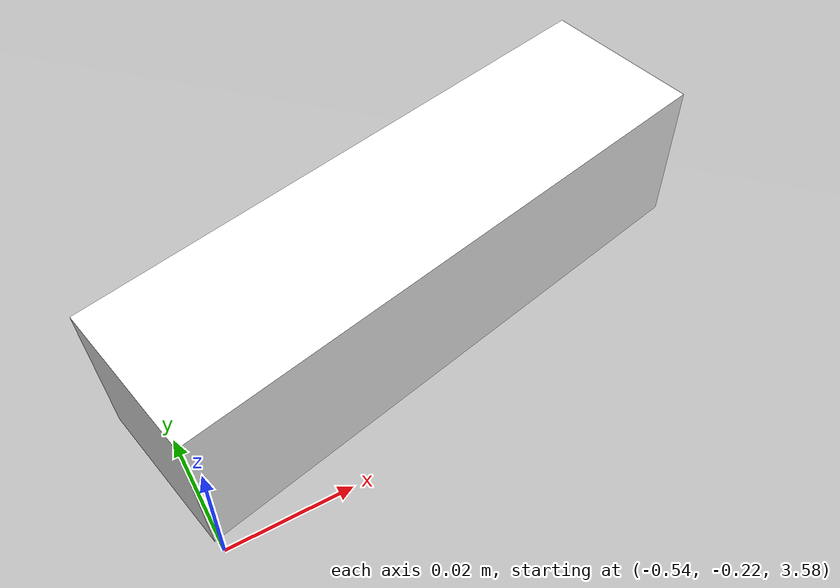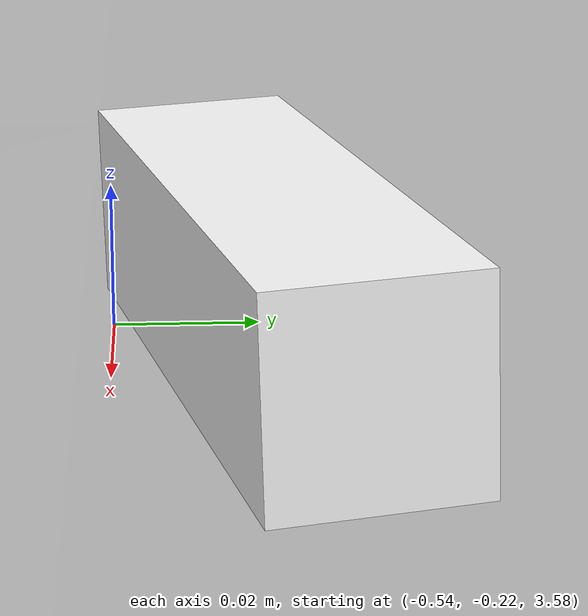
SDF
<?xml version='1.0' encoding='ASCII'?>
<sdf version='1.4'>
  <world name='solar_farm'>
    <physics type='ode'>
      <max_step_size>0.003</max_step_size>
      <real_time_factor>1.0</real_time_factor>
      <real_time_update_rate>1000</real_time_update_rate>
      <gravity>0 0 -9.8</gravity>
    </physics>
    <plugin name='gz::sim::systems::Physics' filename='libgz-sim-physics-system.so'/>
    <plugin name='gz::sim::systems::UserCommands' filename='libgz-sim-user-commands-system.so'/>
    <plugin name='gz::sim::systems::SceneBroadcaster' filename='libgz-sim-scene-broadcaster-system.so'/>
    <plugin name="gz::sim::systems::Sensors" filename="libgz-sim-sensors-system.so">
      <render_engine>ogre2</render_engine>
    </plugin>
    <plugin name="gz::sim::systems::Imu" filename="libgz-sim-imu-system.so"/>
    <plugin name="gz::sim::systems::NavSat" filename="libgz-sim-navsat-system.so"/>
    <plugin name="gz::sim::systems::ForceTorque" filename="libgz-sim-forcetorque-system.so"/>

    <scene>
      <ambient>1 1 1 1</ambient>
      <background>0.3 0.7 0.9 1</background>
      <shadows>0</shadows>
      <grid>false</grid>
      <sky>
        <clouds>
          <speed>12</speed>
        </clouds>
      </sky>
      <shadows>1</shadows>
    </scene>
    <light name='sun' type='directional'>
      <cast_shadows>1</cast_shadows>
      <pose>0 0 10 0 -0 0</pose>
      <diffuse>1.0 1.0 1.0 1</diffuse>
      <specular>0.2 0.2 0.2 1</specular>
      <attenuation>
        <range>1000</range>
        <constant>0.9</constant>
        <linear>0.01</linear>
        <quadratic>0.001</quadratic>
      </attenuation>
      <direction>-0.5 0.5 -1.0</direction>
    </light>

    <!-- Origin placed near the Big Red Barn near Stonewall, MB, Canada -->
    <spherical_coordinates>
      <surface_model>EARTH_WGS84</surface_model>
      <latitude_deg>50.109461</latitude_deg>
      <longitude_deg>-97.318978</longitude_deg>
      <elevation>250</elevation>
      <heading_deg>0</heading_deg>
    </spherical_coordinates>

    <model name='solar_farm'>
      <pose>0 0 0 0 0 3.14159</pose>
      <static>true</static>
      <link name='solar_farm'>
        <collision name='solar_farm_collision'>
          <geometry>
            <mesh>
              <uri>
                model://solar_farm/agriculture_world.dae
              </uri>
            </mesh>
          </geometry>
        </collision>
        <visual name='solar_farm_visual'>
          <geometry>
            <mesh>
              <uri>
                model://solar_farm/agriculture_world.dae
              </uri>
            </mesh>
          </geometry>
        </visual>
      </link>
    </model>

    <!--
      Some accessories for OutdoorNav
    -->

    <model name="fixed_realsense_d435">
      <static>true</static>

      <!-- world pose: x y z roll pitch yaw -->
      <!-- pitch = -pi/2 makes it look down -->
      <!-- yaw rotates the top-down view to match your robot axes -->
      <pose>-0.50 -0.20 3.60 0.02 -0.05 0.20</pose>

      <link name="camera_link">
        <inertial>
          <mass>0.1</mass>
          <inertia>
            <ixx>1e-4</ixx>
            <iyy>1e-4</iyy>
            <izz>1e-4</izz>
            <ixy>0</ixy>
            <ixz>0</ixz>
            <iyz>0</iyz>
          </inertia>
        </inertial>

        <visual name="body_visual">
          <geometry>
            <box>
              <size>0.09 0.025 0.025</size>
            </box>
          </geometry>
          <material>
            <ambient>1 1 1 1</ambient>
            <diffuse>1 1 1 1</diffuse>
            <specular>0 0 0 1</specular>
          </material>
        </visual>
      </link>

      <!-- optical link so axes match ROS optical convention -->
      <link name="camera_optical_link">
        <!-- rotation: roll=-pi/2 yaw=-pi/2 -->
        <pose relative_to="camera_link">0 0 0 0 1.57075 0</pose>

        <sensor name="realsense_rgbd" type="rgbd_camera">
          <always_on>true</always_on>
          <update_rate>30</update_rate>
          <visualize>true</visualize>

          <topic>/a200_0000/camera_0</topic>

          <camera name="color">
            <horizontal_fov>1.20</horizontal_fov>
            <image>
              <width>640</width>
              <height>480</height>
              <format>R8G8B8</format>
            </image>
            <clip>
              <near>0.1</near>
              <far>25</far>
            </clip>
          </camera>

          <depth_camera name="depth">
            <image>
              <width>640</width>
              <height>480</height>
              <format>R_FLOAT32</format>
            </image>
            <clip>
              <near>0.1</near>
              <far>10</far>
            </clip>
          </depth_camera>
        </sensor>
      </link>

      <joint name="camera_optical_fixed" type="fixed">
        <parent>camera_link</parent>
        <child>camera_optical_link</child>
      </joint>
    </model>
  </world>
</sdf>
